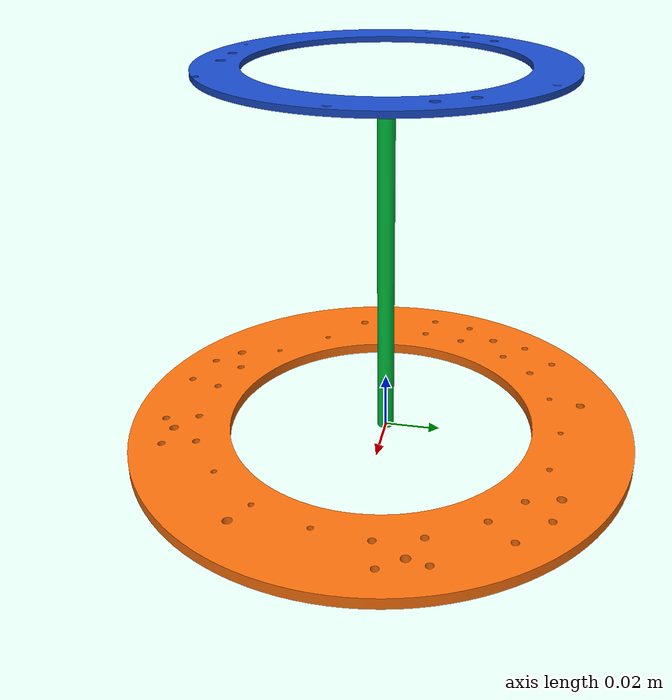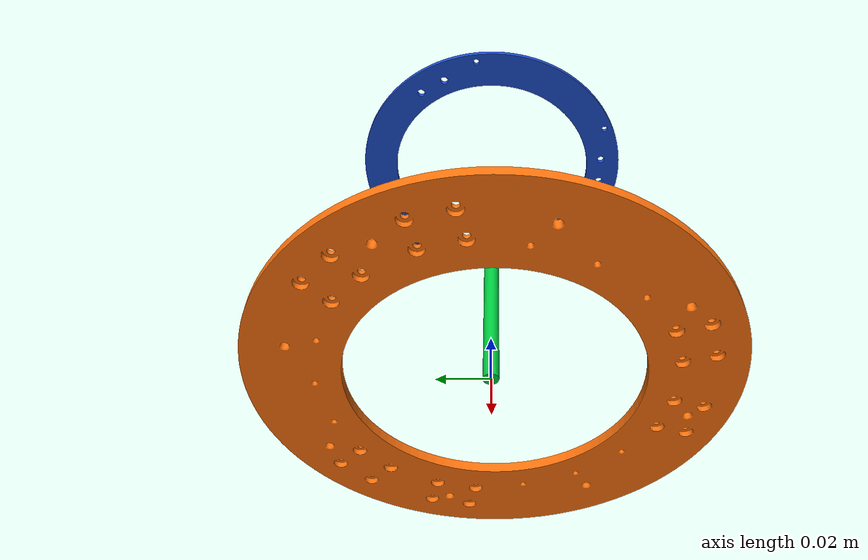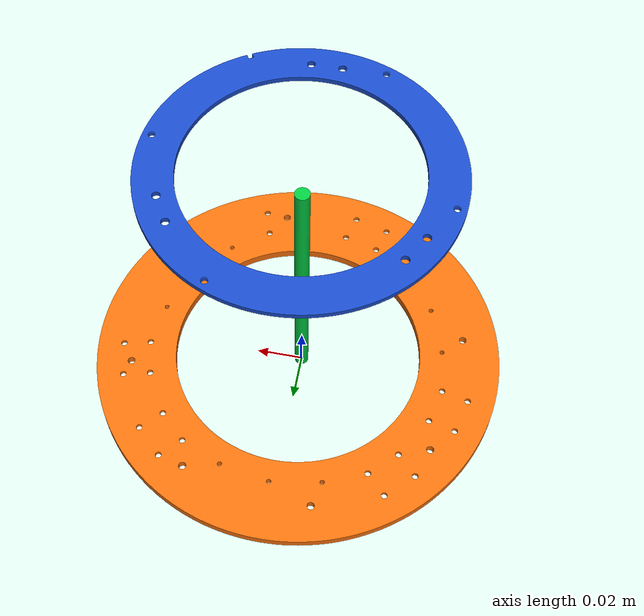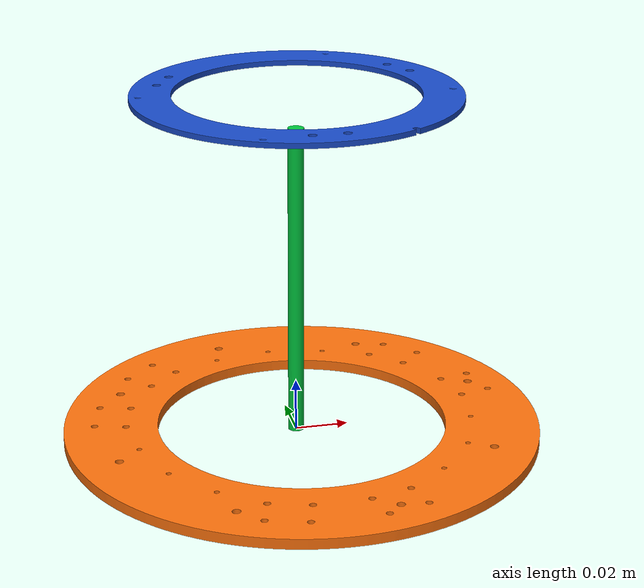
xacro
<?xml version="1.0"?>
<robot name="kimm" xmlns:xacro="http://www.ros.org/wiki/xacro">

  <xacro:include filename="$(find kimm_description)/urdf/materials.xacro"/>
  <xacro:include filename="$(find kimm_description)/urdf/kimm_stewart_platform.xacro"/>

  <xacro:kimm_stewart_platform/>

</robot>

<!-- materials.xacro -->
<robot xmlns:xacro="http://www.ros.org/wiki/xacro">

  <material name="kimm_gray">
    <color rgba="0.55 0.55 0.55 1.0"/>
  </material>

  <material name="kimm_dark_gray">
    <color rgba="0.20 0.20 0.20 1.0"/>
  </material>

  <material name="kimm_blue">
    <color rgba="0.1 0.3 0.8 1.0"/>
  </material>

  <material name="kimm_orange">
    <color rgba="1.0 0.45 0.05 1.0"/>
  </material>

  <material name="kimm_green">
    <color rgba="0.0 0.8 0.25 1.0"/>
  </material>

</robot>

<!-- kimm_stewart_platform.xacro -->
<robot xmlns:xacro="http://www.ros.org/wiki/xacro">

  <xacro:macro name="kimm_stewart_platform">

    <!--
      The proximal ring is the physical fixed base of the KIMM robot.
      It is also the root link of the URDF model.
    -->

    <link name="proximal_ring">
      <visual>
        <origin xyz="0.035 -0.125 0" rpy="0 0 1.0471975511965976"/>
        <geometry>
          <mesh filename="package://kimm_description/meshes/visual/base_plate.stl"
                scale="0.001 0.001 0.001"/>
        </geometry>
        <material name="kimm_orange"/>
      </visual>
      <collision>
        <origin xyz="0.035 -0.125 0" rpy="0 0 1.0471975511965976"/>
        <geometry>
          <mesh filename="package://kimm_description/meshes/visual/base_plate.stl"
                scale="0.001 0.001 0.001"/>
        </geometry>
      </collision>
    </link>

    <link name="platform_x"/>
    <link name="platform_y"/>
    <link name="platform_z"/>
    <link name="platform_roll"/>
    <link name="platform_pitch"/>

    <link name="distal_ring">
      <visual>
        <origin xyz="-0.0815 0.022 0.131" rpy="0 0 -1.0471975511965976"/>
        <geometry>
          <mesh filename="package://kimm_description/meshes/visual/top_plate.stl"
                scale="0.001 0.001 0.001"/>
        </geometry>
        <material name="kimm_blue"/>
      </visual>
      <collision>
        <origin xyz="-0.0815 0.022 0.131" rpy="0 0 -1.0471975511965976"/>
        <geometry>
          <mesh filename="package://kimm_description/meshes/visual/top_plate.stl"
                scale="0.001 0.001 0.001"/>
        </geometry>
      </collision>
    </link>

    <!-- Translation X -->
    <joint name="platform_x_joint" type="prismatic">
      <parent link="proximal_ring"/>
      <child link="platform_x"/>
      <origin xyz="0 0 0" rpy="0 0 0"/>
      <axis xyz="1 0 0"/>
      <limit lower="-0.2" upper="0.2" effort="100" velocity="1.0"/>
    </joint>

    <!-- Translation Y -->
    <joint name="platform_y_joint" type="prismatic">
      <parent link="platform_x"/>
      <child link="platform_y"/>
      <origin xyz="0 0 0" rpy="0 0 0"/>
      <axis xyz="0 1 0"/>
      <limit lower="-0.2" upper="0.2" effort="100" velocity="1.0"/>
    </joint>

    <joint name="platform_z_joint" type="prismatic">
      <parent link="platform_y"/>
      <child link="platform_z"/>
      <origin xyz="0 0 0" rpy="0 0 0"/>
      <axis xyz="0 0 1"/>
      <limit lower="0.0" upper="0.2" effort="100" velocity="1.0"/>
    </joint>

    <!-- Rotation about X -->
    <joint name="platform_roll_joint" type="revolute">
      <parent link="platform_z"/>
      <child link="platform_roll"/>
      <origin xyz="0 0 0" rpy="0 0 0"/>
      <axis xyz="1 0 0"/>
      <limit lower="-1.57" upper="1.57" effort="100" velocity="1.0"/>
    </joint>

    <!-- Rotation about Y -->
    <joint name="platform_pitch_joint" type="revolute">
      <parent link="platform_roll"/>
      <child link="platform_pitch"/>
      <origin xyz="0 0 0" rpy="0 0 0"/>
      <axis xyz="0 1 0"/>
      <limit lower="-1.57" upper="1.57" effort="100" velocity="1.0"/>
    </joint>

    <!-- Rotation about Z -->
    <joint name="platform_yaw_joint" type="revolute">
      <parent link="platform_pitch"/>
      <child link="distal_ring"/>
      <origin xyz="0 0 0" rpy="0 0 0"/>
      <axis xyz="0 0 1"/>
      <limit lower="-3.14" upper="3.14" effort="100" velocity="1.0"/>
    </joint>

    <!-- Tool/probe guide frame attached to the moving platform -->
    <link name="tool_link">
      <visual>
        <origin xyz="0 0 0.06" rpy="0 0 0"/>
        <geometry>
          <cylinder radius="0.003" length="0.12"/>
        </geometry>
        <material name="kimm_green"/>
      </visual>
      <collision>
        <origin xyz="0 0 0.06" rpy="0 0 0"/>
        <geometry>
          <cylinder radius="0.003" length="0.12"/>
        </geometry>
      </collision>
    </link>

    <joint name="distal_ring_to_tool_link" type="fixed">
      <parent link="distal_ring"/>
      <child link="tool_link"/>
      <origin xyz="0 0 0" rpy="0 0 0"/>
    </joint>

  </xacro:macro>

</robot>
